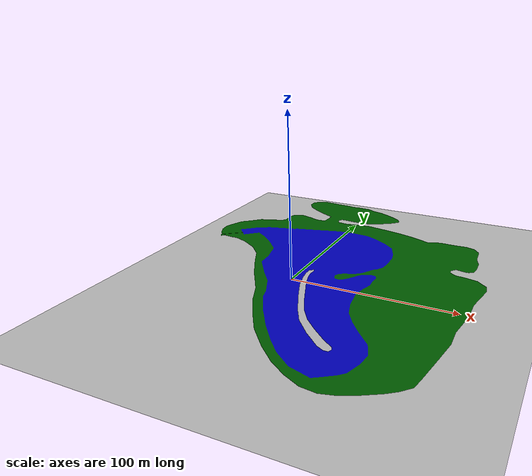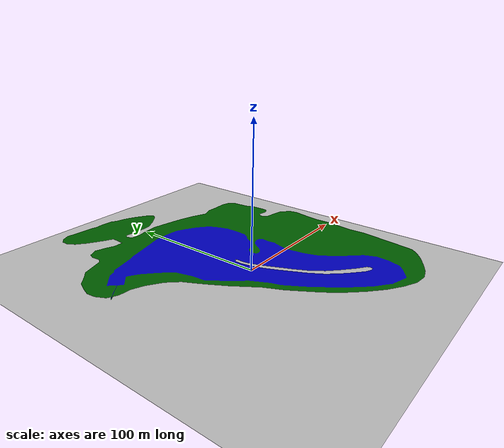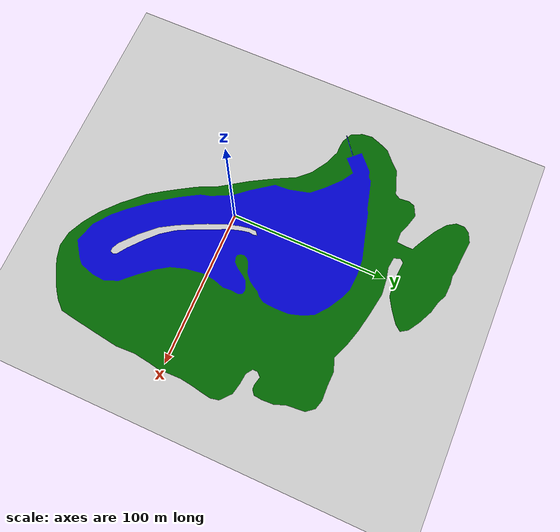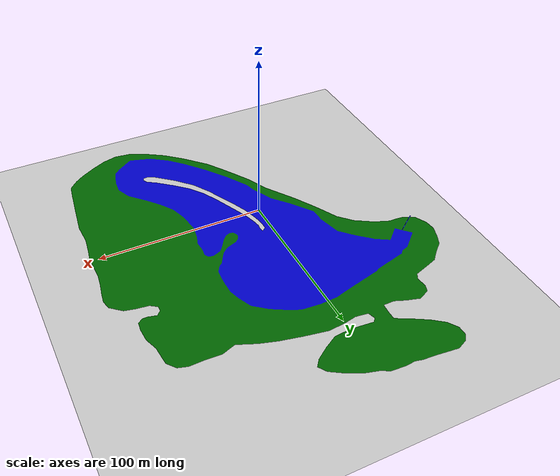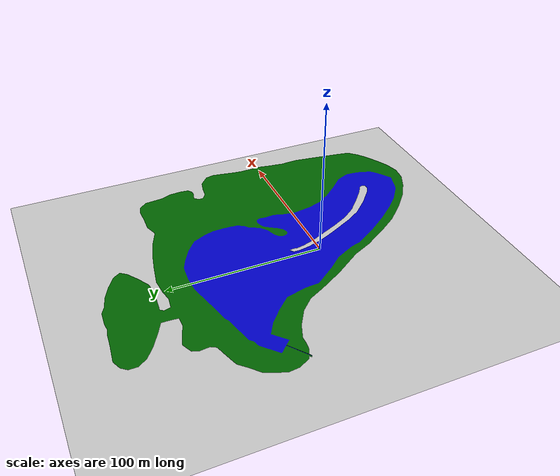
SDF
<?xml version="1.0"?>
<sdf version="1.4">
  <world name="default">
    <include>
      <uri>model://sun</uri>
    </include>
    <spherical_coordinates>
      <surface_model>EARTH_WGS84</surface_model>
      <latitude_deg>43.77</latitude_deg>
      <longitude_deg>-79.51</longitude_deg>
      <elevation>0</elevation>
      <heading_deg>180</heading_deg>
    </spherical_coordinates>
    <model name="Stong_Pond">
      <pose>0 0 0  0 0 0</pose>
      <static>true</static>
      <link name="body">
      <collision name="collision">
          <geometry>
            <plane>
              <normal>0 0 1</normal>
              <size>500 500</size>
            </plane>
          </geometry>
        </collision>
        <visual name="visual">
          <geometry>
            <mesh><uri>stong.dae</uri></mesh>
          </geometry>
        </visual>
      </link>
    </model>
   <model name="muddy_bottom">
      <pose>0 0 -10  0 0 0</pose>
      <static>true</static>
      <link name="mud">
        <collision name="collision">
          <geometry>
            <plane>
              <normal>0 0 1</normal>
              <size>500 500</size>
            </plane>
          </geometry>
        </collision>
        <visual name="visual">
          <geometry>
            <plane>
              <normal>0 0 1</normal>
              <size>500 500</size>
            </plane>
          </geometry>
          <material>Gazebo/Black</material>
        </visual>
      </link>
    </model>

  </world>
</sdf>
